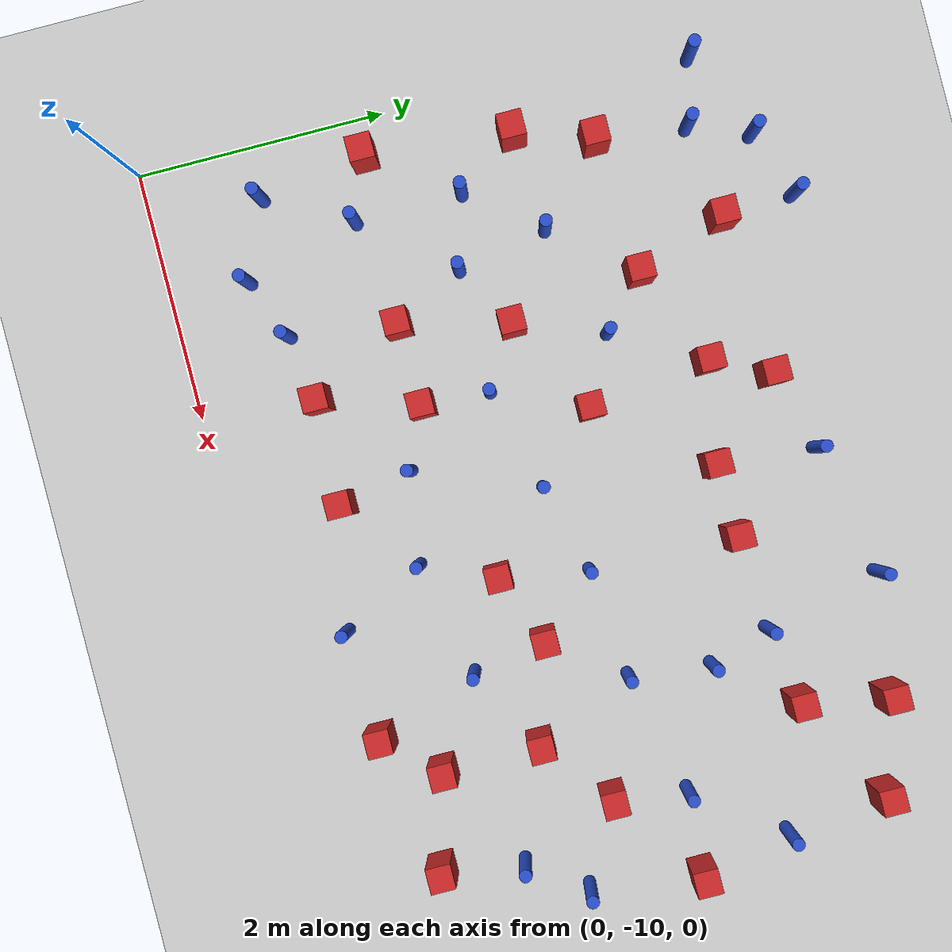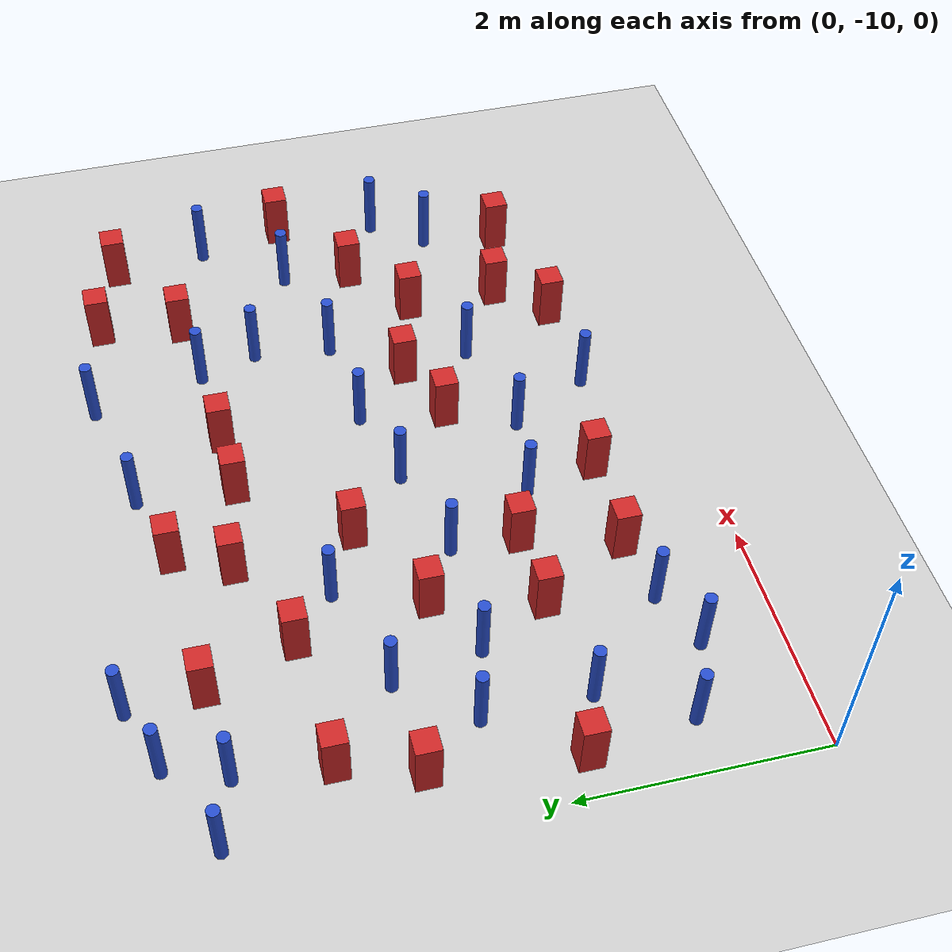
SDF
<sdf version="1.6">
 <world name="default">
  <model name="ground_plane">
   <static>1</static>
   <link name="link">
    <collision name="collision">
     <geometry><plane><normal>0 0 1</normal><size>100 100</size></plane></geometry>
     <surface><friction><ode><mu>100</mu><mu2>50</mu2></ode></friction></surface>
    </collision>
    <visual name="visual">
     <cast_shadows>0</cast_shadows>
     <geometry><plane><normal>0 0 1</normal><size>100 100</size></plane></geometry>
     <material>
      <ambient>1.0 1.0 1.0 1.0</ambient>
      <diffuse>0.8 0.8 0.8 1.0</diffuse>
      <specular>0.01 0.01 0.01 1.000000</specular>
     </material>
    </visual>
   </link>
  </model>
  <model name="pole_obstacle3">
   <static>true</static>
   <pose>1.05795134384 -9.34788797899 7.38925637345e-09 -8.47170692798e-08 1.24976764881e-08 -1.74513093027e-07</pose>
   <link name="link">
    <pose>0 0 0.3 0 -0 0</pose>
    <inertial>
     <mass>1</mass>
     <inertia><ixx>0.145833</ixx><ixy>0</ixy><ixz>0</ixz><iyy>0.145833</iyy><iyz>0</iyz><izz>0.125</izz></inertia>
    </inertial>
    <collision name="collision">
     <geometry><cylinder><radius>0.05</radius><length>.6</length></cylinder></geometry>
    </collision>
    <visual name="visual">
     <geometry><cylinder><radius>0.05</radius><length>.6</length></cylinder></geometry>
     <material>
      <script><name>Gazebo/Blue</name><uri>file://media/materials/scripts/gazebo.material</uri></script>
     </material>
    </visual>
   </link>
  </model>
  <model name="square_post_obstacle4">
   <static>true</static>
   <pose>5.90780278846 -9.03052146955 1.91545236811e-07 -7.35059704564e-06 1.12565212e-07 2.39332434364e-05</pose>
   <link name="link">
    <pose>0 0 0.25 0 -0 0</pose>
    <inertial>
     <mass>100</mass>
     <inertia>
      <ixx>0.166667</ixx>
      <ixy>0</ixy>
      <ixz>0</ixz>
      <iyy>0.166667</iyy>
      <iyz>0</iyz>
      <izz>0.166667</izz>
     </inertia>
    </inertial>
    <collision name="collision"><geometry><box><size>.2 .2 .5</size></box></geometry></collision>
    <visual name="visual">
     <geometry><box><size>.2 .2 .5</size></box></geometry>
     <material>
      <script><name>Gazebo/Red</name><uri>file://media/materials/scripts/gazebo.material</uri></script>
     </material>
    </visual>
   </link>
  </model>
  <model name="pole_obstacle13">
   <static>true</static>
   <pose>6.3429446586 -7.94124706151 7.38925637345e-09 -8.47170692796e-08 1.24976764786e-08 -1.74513093032e-07</pose>
   <link name="link">
    <pose>0 0 0.3 0 -0 0</pose>
    <inertial>
     <mass>1</mass>
     <inertia><ixx>0.145833</ixx><ixy>0</ixy><ixz>0</ixz><iyy>0.145833</iyy><iyz>0</iyz><izz>0.125</izz></inertia>
    </inertial>
    <collision name="collision">
     <geometry><cylinder><radius>0.05</radius><length>.6</length></cylinder></geometry>
    </collision>
    <visual name="visual">
     <geometry><cylinder><radius>0.05</radius><length>.6</length></cylinder></geometry>
     <material>
      <script><name>Gazebo/Blue</name><uri>file://media/materials/scripts/gazebo.material</uri></script>
     </material>
    </visual>
   </link>
  </model>
  <model name="square_post_obstacle10">
   <static>true</static>
   <pose>0.653097989824 -6.43755796853 1.91545236811e-07 -7.35059704564e-06 1.12565212e-07 2.39332434364e-05</pose>
   <link name="link">
    <pose>0 0 0.25 0 -0 0</pose>
    <inertial>
     <mass>100</mass>
     <inertia>
      <ixx>0.166667</ixx>
      <ixy>0</ixy>
      <ixz>0</ixz>
      <iyy>0.166667</iyy>
      <iyz>0</iyz>
      <izz>0.166667</izz>
     </inertia>
    </inertial>
    <collision name="collision"><geometry><box><size>.2 .2 .5</size></box></geometry></collision>
    <visual name="visual">
     <geometry><box><size>.2 .2 .5</size></box></geometry>
     <material>
      <script><name>Gazebo/Red</name><uri>file://media/materials/scripts/gazebo.material</uri></script>
     </material>
    </visual>
   </link>
  </model>
  <model name="pole_obstacle17">
   <static>true</static>
   <pose>0.203960969138 -5.54850880262 7.38925637345e-09 -8.471706928e-08 1.24976765124e-08 -1.74513093014e-07</pose>
   <link name="link">
    <pose>0 0 0.3 0 -0 0</pose>
    <inertial>
     <mass>1</mass>
     <inertia><ixx>0.145833</ixx><ixy>0</ixy><ixz>0</ixz><iyy>0.145833</iyy><iyz>0</iyz><izz>0.125</izz></inertia>
    </inertial>
    <collision name="collision">
     <geometry><cylinder><radius>0.05</radius><length>.6</length></cylinder></geometry>
    </collision>
    <visual name="visual">
     <geometry><cylinder><radius>0.05</radius><length>.6</length></cylinder></geometry>
     <material>
      <script><name>Gazebo/Blue</name><uri>file://media/materials/scripts/gazebo.material</uri></script>
     </material>
    </visual>
   </link>
  </model>
  <model name="pole_obstacle27">
   <static>true</static>
   <pose>4.88375247465 -6.57440800682 7.38925637345e-09 -8.47170692796e-08 1.24976764786e-08 -1.74513093032e-07</pose>
   <link name="link">
    <pose>0 0 0.3 0 -0 0</pose>
    <inertial>
     <mass>1</mass>
     <inertia><ixx>0.145833</ixx><ixy>0</ixy><ixz>0</ixz><iyy>0.145833</iyy><iyz>0</iyz><izz>0.125</izz></inertia>
    </inertial>
    <collision name="collision">
     <geometry><cylinder><radius>0.05</radius><length>.6</length></cylinder></geometry>
    </collision>
    <visual name="visual">
     <geometry><cylinder><radius>0.05</radius><length>.6</length></cylinder></geometry>
     <material>
      <script><name>Gazebo/Blue</name><uri>file://media/materials/scripts/gazebo.material</uri></script>
     </material>
    </visual>
   </link>
  </model>
  <model name="pole_obstacle29">
   <static>true</static>
   <pose>4.50286194384 -5.12811278264 7.38925637345e-09 -8.47170692796e-08 1.24976764786e-08 -1.74513093032e-07</pose>
   <link name="link">
    <pose>0 0 0.3 0 -0 0</pose>
    <inertial>
     <mass>1</mass>
     <inertia><ixx>0.145833</ixx><ixy>0</ixy><ixz>0</ixz><iyy>0.145833</iyy><iyz>0</iyz><izz>0.125</izz></inertia>
    </inertial>
    <collision name="collision">
     <geometry><cylinder><radius>0.05</radius><length>.6</length></cylinder></geometry>
    </collision>
    <visual name="visual">
     <geometry><cylinder><radius>0.05</radius><length>.6</length></cylinder></geometry>
     <material>
      <script><name>Gazebo/Blue</name><uri>file://media/materials/scripts/gazebo.material</uri></script>
     </material>
    </visual>
   </link>
  </model>
  <model name="square_post_obstacle21">
   <static>true</static>
   <pose>0.444392218966 -7.05212360835 1.91545236811e-07 -7.35059704564e-06 1.12565212e-07 2.39332434364e-05</pose>
   <link name="link">
    <pose>0 0 0.25 0 -0 0</pose>
    <inertial>
     <mass>100</mass>
     <inertia>
      <ixx>0.166667</ixx>
      <ixy>0</ixy>
      <ixz>0</ixz>
      <iyy>0.166667</iyy>
      <iyz>0</iyz>
      <izz>0.166667</izz>
     </inertia>
    </inertial>
    <collision name="collision"><geometry><box><size>.2 .2 .5</size></box></geometry></collision>
    <visual name="visual">
     <geometry><box><size>.2 .2 .5</size></box></geometry>
     <material>
      <script><name>Gazebo/Red</name><uri>file://media/materials/scripts/gazebo.material</uri></script>
     </material>
    </visual>
   </link>
  </model>
  <model name="square_post_obstacle24">
   <static>true</static>
   <pose>2.78095363937 -5.54996536458 1.91545236811e-07 -7.35059704564e-06 1.12565212e-07 2.39332434364e-05</pose>
   <link name="link">
    <pose>0 0 0.25 0 -0 0</pose>
    <inertial>
     <mass>100</mass>
     <inertia>
      <ixx>0.166667</ixx>
      <ixy>0</ixy>
      <ixz>0</ixz>
      <iyy>0.166667</iyy>
      <iyz>0</iyz>
      <izz>0.166667</izz>
     </inertia>
    </inertial>
    <collision name="collision"><geometry><box><size>.2 .2 .5</size></box></geometry></collision>
    <visual name="visual">
     <geometry><box><size>.2 .2 .5</size></box></geometry>
     <material>
      <script><name>Gazebo/Red</name><uri>file://media/materials/scripts/gazebo.material</uri></script>
     </material>
    </visual>
   </link>
  </model>
  <model name="square_post_obstacle25">
   <static>true</static>
   <pose>2.68070387838 -6.9954171048 1.91545236811e-07 -7.35059704564e-06 1.12565212e-07 2.39332434364e-05</pose>
   <link name="link">
    <pose>0 0 0.25 0 -0 0</pose>
    <inertial>
     <mass>100</mass>
     <inertia>
      <ixx>0.166667</ixx>
      <ixy>0</ixy>
      <ixz>0</ixz>
      <iyy>0.166667</iyy>
      <iyz>0</iyz>
      <izz>0.166667</izz>
     </inertia>
    </inertial>
    <collision name="collision"><geometry><box><size>.2 .2 .5</size></box></geometry></collision>
    <visual name="visual">
     <geometry><box><size>.2 .2 .5</size></box></geometry>
     <material>
      <script><name>Gazebo/Red</name><uri>file://media/materials/scripts/gazebo.material</uri></script>
     </material>
    </visual>
   </link>
  </model>
  <model name="square_post_obstacle26">
   <static>true</static>
   <pose>4.78776490456 -9.23508792336 1.91545236811e-07 -7.35059704564e-06 1.12565212e-07 2.39332434364e-05</pose>
   <link name="link">
    <pose>0 0 0.25 0 -0 0</pose>
    <inertial>
     <mass>100</mass>
     <inertia>
      <ixx>0.166667</ixx>
      <ixy>0</ixy>
      <ixz>0</ixz>
      <iyy>0.166667</iyy>
      <iyz>0</iyz>
      <izz>0.166667</izz>
     </inertia>
    </inertial>
    <collision name="collision"><geometry><box><size>.2 .2 .5</size></box></geometry></collision>
    <visual name="visual">
     <geometry><box><size>.2 .2 .5</size></box></geometry>
     <material>
      <script><name>Gazebo/Red</name><uri>file://media/materials/scripts/gazebo.material</uri></script>
     </material>
    </visual>
   </link>
  </model>
  <model name="square_post_obstacle30">
   <static>true</static>
   <pose>5.33728949045 -5.98505619092 1.91545236811e-07 -7.35059704564e-06 1.12565212e-07 2.39332434364e-05</pose>
   <link name="link">
    <pose>0 0 0.25 0 -0 0</pose>
    <inertial>
     <mass>100</mass>
     <inertia>
      <ixx>0.166667</ixx>
      <ixy>0</ixy>
      <ixz>0</ixz>
      <iyy>0.166667</iyy>
      <iyz>0</iyz>
      <izz>0.166667</izz>
     </inertia>
    </inertial>
    <collision name="collision"><geometry><box><size>.2 .2 .5</size></box></geometry></collision>
    <visual name="visual">
     <geometry><box><size>.2 .2 .5</size></box></geometry>
     <material>
      <script><name>Gazebo/Red</name><uri>file://media/materials/scripts/gazebo.material</uri></script>
     </material>
    </visual>
   </link>
  </model>
  <model name="pole_obstacle44">
   <static>true</static>
   <pose>0.806512139791 -8.41670155814 7.38925637345e-09 -8.47170692797e-08 1.249767648e-08 -1.74513093032e-07</pose>
   <link name="link">
    <pose>0 0 0.3 0 -0 0</pose>
    <inertial>
     <mass>1</mass>
     <inertia><ixx>0.145833</ixx><ixy>0</ixy><ixz>0</ixz><iyy>0.145833</iyy><iyz>0</iyz><izz>0.125</izz></inertia>
    </inertial>
    <collision name="collision">
     <geometry><cylinder><radius>0.05</radius><length>.6</length></cylinder></geometry>
    </collision>
    <visual name="visual">
     <geometry><cylinder><radius>0.05</radius><length>.6</length></cylinder></geometry>
     <material>
      <script><name>Gazebo/Blue</name><uri>file://media/materials/scripts/gazebo.material</uri></script>
     </material>
    </visual>
   </link>
  </model>
  <model name="square_post_obstacle39">
   <static>true</static>
   <pose>2.09425556777 -9.05012624536 1.91545236811e-07 -7.35059704564e-06 1.12565212e-07 2.39332434364e-05</pose>
   <link name="link">
    <pose>0 0 0.25 0 -0 0</pose>
    <inertial>
     <mass>100</mass>
     <inertia>
      <ixx>0.166667</ixx>
      <ixy>0</ixy>
      <ixz>0</ixz>
      <iyy>0.166667</iyy>
      <iyz>0</iyz>
      <izz>0.166667</izz>
     </inertia>
    </inertial>
    <collision name="collision"><geometry><box><size>.2 .2 .5</size></box></geometry></collision>
    <visual name="visual">
     <geometry><box><size>.2 .2 .5</size></box></geometry>
     <material>
      <script><name>Gazebo/Red</name><uri>file://media/materials/scripts/gazebo.material</uri></script>
     </material>
    </visual>
   </link>
  </model>
  <model name="pole_obstacle52">
   <static>true</static>
   <pose>2.37389168147 -7.72454690963 7.38925637345e-09 -8.47170692798e-08 1.24976765033e-08 -1.74513093019e-07</pose>
   <link name="link">
    <pose>0 0 0.3 0 -0 0</pose>
    <inertial>
     <mass>1</mass>
     <inertia><ixx>0.145833</ixx><ixy>0</ixy><ixz>0</ixz><iyy>0.145833</iyy><iyz>0</iyz><izz>0.125</izz></inertia>
    </inertial>
    <collision name="collision">
     <geometry><cylinder><radius>0.05</radius><length>.6</length></cylinder></geometry>
    </collision>
    <visual name="visual">
     <geometry><cylinder><radius>0.05</radius><length>.6</length></cylinder></geometry>
     <material>
      <script><name>Gazebo/Blue</name><uri>file://media/materials/scripts/gazebo.material</uri></script>
     </material>
    </visual>
   </link>
  </model>
  <model name="square_post_obstacle40">
   <static>true</static>
   <pose>2.33807192643 -8.26988052835 1.91545236811e-07 -7.35059704564e-06 1.12565212e-07 2.39332434364e-05</pose>
   <link name="link">
    <pose>0 0 0.25 0 -0 0</pose>
    <inertial>
     <mass>100</mass>
     <inertia>
      <ixx>0.166667</ixx>
      <ixy>0</ixy>
      <ixz>0</ixz>
      <iyy>0.166667</iyy>
      <iyz>0</iyz>
      <izz>0.166667</izz>
     </inertia>
    </inertial>
    <collision name="collision"><geometry><box><size>.2 .2 .5</size></box></geometry></collision>
    <visual name="visual">
     <geometry><box><size>.2 .2 .5</size></box></geometry>
     <material>
      <script><name>Gazebo/Red</name><uri>file://media/materials/scripts/gazebo.material</uri></script>
     </material>
    </visual>
   </link>
  </model>
  <model name="square_post_obstacle41">
   <static>true</static>
   <pose>6.20964071692 -5.51442584216 1.91545236811e-07 -7.35059704564e-06 1.12565212e-07 2.39332434364e-05</pose>
   <link name="link">
    <pose>0 0 0.25 0 -0 0</pose>
    <inertial>
     <mass>100</mass>
     <inertia>
      <ixx>0.166667</ixx>
      <ixy>0</ixy>
      <ixz>0</ixz>
      <iyy>0.166667</iyy>
      <iyz>0</iyz>
      <izz>0.166667</izz>
     </inertia>
    </inertial>
    <collision name="collision"><geometry><box><size>.2 .2 .5</size></box></geometry></collision>
    <visual name="visual">
     <geometry><box><size>.2 .2 .5</size></box></geometry>
     <material>
      <script><name>Gazebo/Red</name><uri>file://media/materials/scripts/gazebo.material</uri></script>
     </material>
    </visual>
   </link>
  </model>
  <model name="pole_obstacle58">
   <static>true</static>
   <pose>3.54991783234 -8.60437881437 7.38925637345e-09 -8.47170692793e-08 1.24976764408e-08 -1.74513093041e-07</pose>
   <link name="link">
    <pose>0 0 0.3 0 -0 0</pose>
    <inertial>
     <mass>1</mass>
     <inertia><ixx>0.145833</ixx><ixy>0</ixy><ixz>0</ixz><iyy>0.145833</iyy><iyz>0</iyz><izz>0.125</izz></inertia>
    </inertial>
    <collision name="collision">
     <geometry><cylinder><radius>0.05</radius><length>.6</length></cylinder></geometry>
    </collision>
    <visual name="visual">
     <geometry><cylinder><radius>0.05</radius><length>.6</length></cylinder></geometry>
     <material>
      <script><name>Gazebo/Blue</name><uri>file://media/materials/scripts/gazebo.material</uri></script>
     </material>
    </visual>
   </link>
  </model>
  <model name="square_post_obstacle47">
   <static>true</static>
   <pose>3.79479880949 -8.02449202139 1.91545236811e-07 -7.35059704564e-06 1.12565212e-07 2.39332434364e-05</pose>
   <link name="link">
    <pose>0 0 0.25 0 -0 0</pose>
    <inertial>
     <mass>100</mass>
     <inertia>
      <ixx>0.166667</ixx>
      <ixy>0</ixy>
      <ixz>0</ixz>
      <iyy>0.166667</iyy>
      <iyz>0</iyz>
      <izz>0.166667</izz>
     </inertia>
    </inertial>
    <collision name="collision"><geometry><box><size>.2 .2 .5</size></box></geometry></collision>
    <visual name="visual">
     <geometry><box><size>.2 .2 .5</size></box></geometry>
     <material>
      <script><name>Gazebo/Red</name><uri>file://media/materials/scripts/gazebo.material</uri></script>
     </material>
    </visual>
   </link>
  </model>
  <model name="square_post_obstacle50">
   <static>true</static>
   <pose>3.36151711548 -6.1576547651 1.91545236811e-07 -7.35059704564e-06 1.12565212e-07 2.39332434364e-05</pose>
   <link name="link">
    <pose>0 0 0.25 0 -0 0</pose>
    <inertial>
     <mass>100</mass>
     <inertia>
      <ixx>0.166667</ixx>
      <ixy>0</ixy>
      <ixz>0</ixz>
      <iyy>0.166667</iyy>
      <iyz>0</iyz>
      <izz>0.166667</izz>
     </inertia>
    </inertial>
    <collision name="collision"><geometry><box><size>.2 .2 .5</size></box></geometry></collision>
    <visual name="visual">
     <geometry><box><size>.2 .2 .5</size></box></geometry>
     <material>
      <script><name>Gazebo/Red</name><uri>file://media/materials/scripts/gazebo.material</uri></script>
     </material>
    </visual>
   </link>
  </model>
  <model name="square_post_obstacle51">
   <static>true</static>
   <pose>6.45801496377 -7.05389710991 1.91545236811e-07 -7.35059704564e-06 1.12565212e-07 2.39332434364e-05</pose>
   <link name="link">
    <pose>0 0 0.25 0 -0 0</pose>
    <inertial>
     <mass>100</mass>
     <inertia>
      <ixx>0.166667</ixx>
      <ixy>0</ixy>
      <ixz>0</ixz>
      <iyy>0.166667</iyy>
      <iyz>0</iyz>
      <izz>0.166667</izz>
     </inertia>
    </inertial>
    <collision name="collision"><geometry><box><size>.2 .2 .5</size></box></geometry></collision>
    <visual name="visual">
     <geometry><box><size>.2 .2 .5</size></box></geometry>
     <material>
      <script><name>Gazebo/Red</name><uri>file://media/materials/scripts/gazebo.material</uri></script>
     </material>
    </visual>
   </link>
  </model>
  <model name="square_post_obstacle60">
   <static>true</static>
   <pose>1.74928343578 -6.35825586301 1.91545236811e-07 -7.35059704564e-06 1.12565212e-07 2.39332434364e-05</pose>
   <link name="link">
    <pose>0 0 0.25 0 -0 0</pose>
    <inertial>
     <mass>100</mass>
     <inertia>
      <ixx>0.166667</ixx>
      <ixy>0</ixy>
      <ixz>0</ixz>
      <iyy>0.166667</iyy>
      <iyz>0</iyz>
      <izz>0.166667</izz>
     </inertia>
    </inertial>
    <collision name="collision"><geometry><box><size>.2 .2 .5</size></box></geometry></collision>
    <visual name="visual">
     <geometry><box><size>.2 .2 .5</size></box></geometry>
     <material>
      <script><name>Gazebo/Red</name><uri>file://media/materials/scripts/gazebo.material</uri></script>
     </material>
    </visual>
   </link>
  </model>
  <model name="square_post_obstacle66">
   <static>true</static>
   <pose>5.46292440655 -5.28933867114 1.91545236811e-07 -7.35059704564e-06 1.12565212e-07 2.39332434364e-05</pose>
   <link name="link">
    <pose>0 0 0.25 0 -0 0</pose>
    <inertial>
     <mass>100</mass>
     <inertia>
      <ixx>0.166667</ixx>
      <ixy>0</ixy>
      <ixz>0</ixz>
      <iyy>0.166667</iyy>
      <iyz>0</iyz>
      <izz>0.166667</izz>
     </inertia>
    </inertial>
    <collision name="collision"><geometry><box><size>.2 .2 .5</size></box></geometry></collision>
    <visual name="visual">
     <geometry><box><size>.2 .2 .5</size></box></geometry>
     <material>
      <script><name>Gazebo/Red</name><uri>file://media/materials/scripts/gazebo.material</uri></script>
     </material>
    </visual>
   </link>
  </model>
  <model name="pole_obstacle81">
   <static>true</static>
   <pose>4.72069500537 -6.07821843026 7.38925637345e-09 -8.47170692796e-08 1.24976764786e-08 -1.74513093032e-07</pose>
   <link name="link">
    <pose>0 0 0.3 0 -0 0</pose>
    <inertial>
     <mass>1</mass>
     <inertia><ixx>0.145833</ixx><ixy>0</ixy><ixz>0</ixz><iyy>0.145833</iyy><iyz>0</iyz><izz>0.125</izz></inertia>
    </inertial>
    <collision name="collision">
     <geometry><cylinder><radius>0.05</radius><length>.6</length></cylinder></geometry>
    </collision>
    <visual name="visual">
     <geometry><cylinder><radius>0.05</radius><length>.6</length></cylinder></geometry>
     <material>
      <script><name>Gazebo/Blue</name><uri>file://media/materials/scripts/gazebo.material</uri></script>
     </material>
    </visual>
   </link>
  </model>
  <model name="pole_obstacle83">
   <static>true</static>
   <pose>0.796241140828 -7.54776595732 7.38925637345e-09 -8.471706928e-08 1.24976765086e-08 -1.74513093015e-07</pose>
   <link name="link">
    <pose>0 0 0.3 0 -0 0</pose>
    <inertial>
     <mass>1</mass>
     <inertia><ixx>0.145833</ixx><ixy>0</ixy><ixz>0</ixz><iyy>0.145833</iyy><iyz>0</iyz><izz>0.125</izz></inertia>
    </inertial>
    <collision name="collision">
     <geometry><cylinder><radius>0.05</radius><length>.6</length></cylinder></geometry>
    </collision>
    <visual name="visual">
     <geometry><cylinder><radius>0.05</radius><length>.6</length></cylinder></geometry>
     <material>
      <script><name>Gazebo/Blue</name><uri>file://media/materials/scripts/gazebo.material</uri></script>
     </material>
    </visual>
   </link>
  </model>
  <model name="pole_obstacle84">
   <static>true</static>
   <pose>1.45996253803 -5.02282189271 7.38925637345e-09 -8.47170692799e-08 1.24976765033e-08 -1.74513093018e-07</pose>
   <link name="link">
    <pose>0 0 0.3 0 -0 0</pose>
    <inertial>
     <mass>1</mass>
     <inertia><ixx>0.145833</ixx><ixy>0</ixy><ixz>0</ixz><iyy>0.145833</iyy><iyz>0</iyz><izz>0.125</izz></inertia>
    </inertial>
    <collision name="collision">
     <geometry><cylinder><radius>0.05</radius><length>.6</length></cylinder></geometry>
    </collision>
    <visual name="visual">
     <geometry><cylinder><radius>0.05</radius><length>.6</length></cylinder></geometry>
     <material>
      <script><name>Gazebo/Blue</name><uri>file://media/materials/scripts/gazebo.material</uri></script>
     </material>
    </visual>
   </link>
  </model>
  <model name="pole_obstacle88">
   <static>true</static>
   <pose>2.81414375389 -8.48659525875 7.38925637345e-09 -8.47170692793e-08 1.24976764408e-08 -1.74513093041e-07</pose>
   <link name="link">
    <pose>0 0 0.3 0 -0 0</pose>
    <inertial>
     <mass>1</mass>
     <inertia><ixx>0.145833</ixx><ixy>0</ixy><ixz>0</ixz><iyy>0.145833</iyy><iyz>0</iyz><izz>0.125</izz></inertia>
    </inertial>
    <collision name="collision">
     <geometry><cylinder><radius>0.05</radius><length>.6</length></cylinder></geometry>
    </collision>
    <visual name="visual">
     <geometry><cylinder><radius>0.05</radius><length>.6</length></cylinder></geometry>
     <material>
      <script><name>Gazebo/Blue</name><uri>file://media/materials/scripts/gazebo.material</uri></script>
     </material>
    </visual>
   </link>
  </model>
  <model name="square_post_obstacle78">
   <static>true</static>
   <pose>5.14772590415 -8.03112473591 1.91545236811e-07 -7.35059704564e-06 1.12565212e-07 2.39332434364e-05</pose>
   <link name="link">
    <pose>0 0 0.25 0 -0 0</pose>
    <inertial>
     <mass>100</mass>
     <inertia>
      <ixx>0.166667</ixx>
      <ixy>0</ixy>
      <ixz>0</ixz>
      <iyy>0.166667</iyy>
      <iyz>0</iyz>
      <izz>0.166667</izz>
     </inertia>
    </inertial>
    <collision name="collision"><geometry><box><size>.2 .2 .5</size></box></geometry></collision>
    <visual name="visual">
     <geometry><box><size>.2 .2 .5</size></box></geometry>
     <material>
      <script><name>Gazebo/Red</name><uri>file://media/materials/scripts/gazebo.material</uri></script>
     </material>
    </visual>
   </link>
  </model>
  <model name="square_post_obstacle88">
   <static>true</static>
   <pose>1.67628485544 -8.29163907774 1.91545236811e-07 -7.35059704564e-06 1.12565212e-07 2.39332434364e-05</pose>
   <link name="link">
    <pose>0 0 0.25 0 -0 0</pose>
    <inertial>
     <mass>100</mass>
     <inertia>
      <ixx>0.166667</ixx>
      <ixy>0</ixy>
      <ixz>0</ixz>
      <iyy>0.166667</iyy>
      <iyz>0</iyz>
      <izz>0.166667</izz>
     </inertia>
    </inertial>
    <collision name="collision"><geometry><box><size>.2 .2 .5</size></box></geometry></collision>
    <visual name="visual">
     <geometry><box><size>.2 .2 .5</size></box></geometry>
     <material>
      <script><name>Gazebo/Red</name><uri>file://media/materials/scripts/gazebo.material</uri></script>
     </material>
    </visual>
   </link>
  </model>
  <model name="pole_obstacle108">
   <static>true</static>
   <pose>3.19937729945 -7.50906910845 7.38925637345e-09 -8.47170692798e-08 1.24976765033e-08 -1.74513093019e-07</pose>
   <link name="link">
    <pose>0 0 0.3 0 -0 0</pose>
    <inertial>
     <mass>1</mass>
     <inertia><ixx>0.145833</ixx><ixy>0</ixy><ixz>0</ixz><iyy>0.145833</iyy><iyz>0</iyz><izz>0.125</izz></inertia>
    </inertial>
    <collision name="collision">
     <geometry><cylinder><radius>0.05</radius><length>.6</length></cylinder></geometry>
    </collision>
    <visual name="visual">
     <geometry><cylinder><radius>0.05</radius><length>.6</length></cylinder></geometry>
     <material>
      <script><name>Gazebo/Blue</name><uri>file://media/materials/scripts/gazebo.material</uri></script>
     </material>
    </visual>
   </link>
  </model>
  <model name="square_post_obstacle114">
   <static>true</static>
   <pose>4.37062049661 -7.80031642551 1.91545236811e-07 -7.35059704564e-06 1.12565212e-07 2.39332434364e-05</pose>
   <link name="link">
    <pose>0 0 0.25 0 -0 0</pose>
    <inertial>
     <mass>100</mass>
     <inertia>
      <ixx>0.166667</ixx>
      <ixy>0</ixy>
      <ixz>0</ixz>
      <iyy>0.166667</iyy>
      <iyz>0</iyz>
      <izz>0.166667</izz>
     </inertia>
    </inertial>
    <collision name="collision"><geometry><box><size>.2 .2 .5</size></box></geometry></collision>
    <visual name="visual">
     <geometry><box><size>.2 .2 .5</size></box></geometry>
     <material>
      <script><name>Gazebo/Red</name><uri>file://media/materials/scripts/gazebo.material</uri></script>
     </material>
    </visual>
   </link>
  </model>
  <model name="pole_obstacle119">
   <static>true</static>
   <pose>1.54973930428 -9.15057605739 7.38925637345e-09 -8.47170692798e-08 1.24976764881e-08 -1.74513093027e-07</pose>
   <link name="link">
    <pose>0 0 0.3 0 -0 0</pose>
    <inertial>
     <mass>1</mass>
     <inertia><ixx>0.145833</ixx><ixy>0</ixy><ixz>0</ixz><iyy>0.145833</iyy><iyz>0</iyz><izz>0.125</izz></inertia>
    </inertial>
    <collision name="collision">
     <geometry><cylinder><radius>0.05</radius><length>.6</length></cylinder></geometry>
    </collision>
    <visual name="visual">
     <geometry><cylinder><radius>0.05</radius><length>.6</length></cylinder></geometry>
     <material>
      <script><name>Gazebo/Blue</name><uri>file://media/materials/scripts/gazebo.material</uri></script>
     </material>
    </visual>
   </link>
  </model>
  <model name="pole_obstacle121">
   <static>true</static>
   <pose>0.918908124001 -5.22301395987 7.38925637345e-09 -8.471706928e-08 1.24976765086e-08 -1.74513093015e-07</pose>
   <link name="link">
    <pose>0 0 0.3 0 -0 0</pose>
    <inertial>
     <mass>1</mass>
     <inertia><ixx>0.145833</ixx><ixy>0</ixy><ixz>0</ixz><iyy>0.145833</iyy><iyz>0</iyz><izz>0.125</izz></inertia>
    </inertial>
    <collision name="collision">
     <geometry><cylinder><radius>0.05</radius><length>.6</length></cylinder></geometry>
    </collision>
    <visual name="visual">
     <geometry><cylinder><radius>0.05</radius><length>.6</length></cylinder></geometry>
     <material>
      <script><name>Gazebo/Blue</name><uri>file://media/materials/scripts/gazebo.material</uri></script>
     </material>
    </visual>
   </link>
  </model>
  <model name="pole_obstacle130">
   <static>true</static>
   <pose>1.24032207118 -6.98483126732 7.38925637345e-09 -8.47170692799e-08 1.24976765033e-08 -1.74513093018e-07</pose>
   <link name="link">
    <pose>0 0 0.3 0 -0 0</pose>
    <inertial>
     <mass>1</mass>
     <inertia><ixx>0.145833</ixx><ixy>0</ixy><ixz>0</ixz><iyy>0.145833</iyy><iyz>0</iyz><izz>0.125</izz></inertia>
    </inertial>
    <collision name="collision">
     <geometry><cylinder><radius>0.05</radius><length>.6</length></cylinder></geometry>
    </collision>
    <visual name="visual">
     <geometry><cylinder><radius>0.05</radius><length>.6</length></cylinder></geometry>
     <material>
      <script><name>Gazebo/Blue</name><uri>file://media/materials/scripts/gazebo.material</uri></script>
     </material>
    </visual>
   </link>
  </model>
  <model name="pole_obstacle134">
   <static>true</static>
   <pose>5.79524228353 -7.00598912511 7.38925637345e-09 -8.47170692796e-08 1.24976764786e-08 -1.74513093032e-07</pose>
   <link name="link">
    <pose>0 0 0.3 0 -0 0</pose>
    <inertial>
     <mass>1</mass>
     <inertia><ixx>0.145833</ixx><ixy>0</ixy><ixz>0</ixz><iyy>0.145833</iyy><iyz>0</iyz><izz>0.125</izz></inertia>
    </inertial>
    <collision name="collision">
     <geometry><cylinder><radius>0.05</radius><length>.6</length></cylinder></geometry>
    </collision>
    <visual name="visual">
     <geometry><cylinder><radius>0.05</radius><length>.6</length></cylinder></geometry>
     <material>
      <script><name>Gazebo/Blue</name><uri>file://media/materials/scripts/gazebo.material</uri></script>
     </material>
    </visual>
   </link>
  </model>
  <model name="square_post_obstacle133">
   <static>true</static>
   <pose>1.89292083979 -7.42460722523 1.91545236811e-07 -7.35059704564e-06 1.12565212e-07 2.39332434364e-05</pose>
   <link name="link">
    <pose>0 0 0.25 0 -0 0</pose>
    <inertial>
     <mass>100</mass>
     <inertia>
      <ixx>0.166667</ixx>
      <ixy>0</ixy>
      <ixz>0</ixz>
      <iyy>0.166667</iyy>
      <iyz>0</iyz>
      <izz>0.166667</izz>
     </inertia>
    </inertial>
    <collision name="collision"><geometry><box><size>.2 .2 .5</size></box></geometry></collision>
    <visual name="visual">
     <geometry><box><size>.2 .2 .5</size></box></geometry>
     <material>
      <script><name>Gazebo/Red</name><uri>file://media/materials/scripts/gazebo.material</uri></script>
     </material>
    </visual>
   </link>
  </model>
  <model name="pole_obstacle141">
   <static>true</static>
   <pose>0.738035743076 -5.70199784005 7.38925637345e-09 -8.471706928e-08 1.24976765086e-08 -1.74513093015e-07</pose>
   <link name="link">
    <pose>0 0 0.3 0 -0 0</pose>
    <inertial>
     <mass>1</mass>
     <inertia><ixx>0.145833</ixx><ixy>0</ixy><ixz>0</ixz><iyy>0.145833</iyy><iyz>0</iyz><izz>0.125</izz></inertia>
    </inertial>
    <collision name="collision">
     <geometry><cylinder><radius>0.05</radius><length>.6</length></cylinder></geometry>
    </collision>
    <visual name="visual">
     <geometry><cylinder><radius>0.05</radius><length>.6</length></cylinder></geometry>
     <material>
      <script><name>Gazebo/Blue</name><uri>file://media/materials/scripts/gazebo.material</uri></script>
     </material>
    </visual>
   </link>
  </model>
  <model name="pole_obstacle142">
   <static>true</static>
   <pose>3.92197028383 -7.32024069006 7.38925637345e-09 -8.47170692798e-08 1.24976765033e-08 -1.74513093019e-07</pose>
   <link name="link">
    <pose>0 0 0.3 0 -0 0</pose>
    <inertial>
     <mass>1</mass>
     <inertia><ixx>0.145833</ixx><ixy>0</ixy><ixz>0</ixz><iyy>0.145833</iyy><iyz>0</iyz><izz>0.125</izz></inertia>
    </inertial>
    <collision name="collision">
     <geometry><cylinder><radius>0.05</radius><length>.6</length></cylinder></geometry>
    </collision>
    <visual name="visual">
     <geometry><cylinder><radius>0.05</radius><length>.6</length></cylinder></geometry>
     <material>
      <script><name>Gazebo/Blue</name><uri>file://media/materials/scripts/gazebo.material</uri></script>
     </material>
    </visual>
   </link>
  </model>
  <model name="pole_obstacle145">
   <static>true</static>
   <pose>3.43709636579 -5.35096554056 7.38925637345e-09 -8.47170692798e-08 1.24976765033e-08 -1.74513093019e-07</pose>
   <link name="link">
    <pose>0 0 0.3 0 -0 0</pose>
    <inertial>
     <mass>1</mass>
     <inertia><ixx>0.145833</ixx><ixy>0</ixy><ixz>0</ixz><iyy>0.145833</iyy><iyz>0</iyz><izz>0.125</izz></inertia>
    </inertial>
    <collision name="collision">
     <geometry><cylinder><radius>0.05</radius><length>.6</length></cylinder></geometry>
    </collision>
    <visual name="visual">
     <geometry><cylinder><radius>0.05</radius><length>.6</length></cylinder></geometry>
     <material>
      <script><name>Gazebo/Blue</name><uri>file://media/materials/scripts/gazebo.material</uri></script>
     </material>
    </visual>
   </link>
  </model>
  <model name="square_post_obstacle140">
   <static>true</static>
   <pose>1.49073857067 -5.62463249638 1.91545236811e-07 -7.35059704564e-06 1.12565212e-07 2.39332434364e-05</pose>
   <link name="link">
    <pose>0 0 0.25 0 -0 0</pose>
    <inertial>
     <mass>100</mass>
     <inertia>
      <ixx>0.166667</ixx>
      <ixy>0</ixy>
      <ixz>0</ixz>
      <iyy>0.166667</iyy>
      <iyz>0</iyz>
      <izz>0.166667</izz>
     </inertia>
    </inertial>
    <collision name="collision"><geometry><box><size>.2 .2 .5</size></box></geometry></collision>
    <visual name="visual">
     <geometry><box><size>.2 .2 .5</size></box></geometry>
     <material>
      <script><name>Gazebo/Red</name><uri>file://media/materials/scripts/gazebo.material</uri></script>
     </material>
    </visual>
   </link>
  </model>
  <model name="pole_obstacle149">
   <static>true</static>
   <pose>0.44318292713 -9.08681300571 7.38925637345e-09 -8.47170692796e-08 1.24976764724e-08 -1.74513093036e-07</pose>
   <link name="link">
    <pose>0 0 0.3 0 -0 0</pose>
    <inertial>
     <mass>1</mass>
     <inertia><ixx>0.145833</ixx><ixy>0</ixy><ixz>0</ixz><iyy>0.145833</iyy><iyz>0</iyz><izz>0.125</izz></inertia>
    </inertial>
    <collision name="collision">
     <geometry><cylinder><radius>0.05</radius><length>.6</length></cylinder></geometry>
    </collision>
    <visual name="visual">
     <geometry><cylinder><radius>0.05</radius><length>.6</length></cylinder></geometry>
     <material>
      <script><name>Gazebo/Blue</name><uri>file://media/materials/scripts/gazebo.material</uri></script>
     </material>
    </visual>
   </link>
  </model>
  <model name="square_post_obstacle146">
   <static>true</static>
   <pose>5.69916006152 -7.58846634871 1.91545236811e-07 -7.35059704564e-06 1.12565212e-07 2.39332434364e-05</pose>
   <link name="link">
    <pose>0 0 0.25 0 -0 0</pose>
    <inertial>
     <mass>100</mass>
     <inertia>
      <ixx>0.166667</ixx>
      <ixy>0</ixy>
      <ixz>0</ixz>
      <iyy>0.166667</iyy>
      <iyz>0</iyz>
      <izz>0.166667</izz>
     </inertia>
    </inertial>
    <collision name="collision"><geometry><box><size>.2 .2 .5</size></box></geometry></collision>
    <visual name="visual">
     <geometry><box><size>.2 .2 .5</size></box></geometry>
     <material>
      <script><name>Gazebo/Red</name><uri>file://media/materials/scripts/gazebo.material</uri></script>
     </material>
    </visual>
   </link>
  </model>
  <model name="pole_obstacle153">
   <static>true</static>
   <pose>6.02276414969 -8.38680026043 7.38925637345e-09 -8.471706928e-08 1.24976765081e-08 -1.74513093015e-07</pose>
   <link name="link">
    <pose>0 0 0.3 0 -0 0</pose>
    <inertial>
     <mass>1</mass>
     <inertia><ixx>0.145833</ixx><ixy>0</ixy><ixz>0</ixz><iyy>0.145833</iyy><iyz>0</iyz><izz>0.125</izz></inertia>
    </inertial>
    <collision name="collision">
     <geometry><cylinder><radius>0.05</radius><length>.6</length></cylinder></geometry>
    </collision>
    <visual name="visual">
     <geometry><cylinder><radius>0.05</radius><length>.6</length></cylinder></geometry>
     <material>
      <script><name>Gazebo/Blue</name><uri>file://media/materials/scripts/gazebo.material</uri></script>
     </material>
    </visual>
   </link>
  </model>
  <model name="pole_obstacle155">
   <static>true</static>
   <pose>2.15474010425 -6.71388715049 7.38925637345e-09 -8.47170692798e-08 1.24976765033e-08 -1.74513093019e-07</pose>
   <link name="link">
    <pose>0 0 0.3 0 -0 0</pose>
    <inertial>
     <mass>1</mass>
     <inertia><ixx>0.145833</ixx><ixy>0</ixy><ixz>0</ixz><iyy>0.145833</iyy><iyz>0</iyz><izz>0.125</izz></inertia>
    </inertial>
    <collision name="collision">
     <geometry><cylinder><radius>0.05</radius><length>.6</length></cylinder></geometry>
    </collision>
    <visual name="visual">
     <geometry><cylinder><radius>0.05</radius><length>.6</length></cylinder></geometry>
     <material>
      <script><name>Gazebo/Blue</name><uri>file://media/materials/scripts/gazebo.material</uri></script>
     </material>
    </visual>
   </link>
  </model>
  <model name="pole_obstacle156">
   <static>true</static>
   <pose>3.91317589611 -9.28610339892 7.38925637345e-09 -8.47170692793e-08 1.24976764408e-08 -1.74513093041e-07</pose>
   <link name="link">
    <pose>0 0 0.3 0 -0 0</pose>
    <inertial>
     <mass>1</mass>
     <inertia><ixx>0.145833</ixx><ixy>0</ixy><ixz>0</ixz><iyy>0.145833</iyy><iyz>0</iyz><izz>0.125</izz></inertia>
    </inertial>
    <collision name="collision">
     <geometry><cylinder><radius>0.05</radius><length>.6</length></cylinder></geometry>
    </collision>
    <visual name="visual">
     <geometry><cylinder><radius>0.05</radius><length>.6</length></cylinder></geometry>
     <material>
      <script><name>Gazebo/Blue</name><uri>file://media/materials/scripts/gazebo.material</uri></script>
     </material>
    </visual>
   </link>
  </model>
  <model name="pole_obstacle162">
   <static>true</static>
   <pose>4.80211189879 -7.23325242031 7.38925637345e-09 -8.47170692796e-08 1.24976764786e-08 -1.74513093032e-07</pose>
   <link name="link">
    <pose>0 0 0.3 0 -0 0</pose>
    <inertial>
     <mass>1</mass>
     <inertia><ixx>0.145833</ixx><ixy>0</ixy><ixz>0</ixz><iyy>0.145833</iyy><iyz>0</iyz><izz>0.125</izz></inertia>
    </inertial>
    <collision name="collision">
     <geometry><cylinder><radius>0.05</radius><length>.6</length></cylinder></geometry>
    </collision>
    <visual name="visual">
     <geometry><cylinder><radius>0.05</radius><length>.6</length></cylinder></geometry>
     <material>
      <script><name>Gazebo/Blue</name><uri>file://media/materials/scripts/gazebo.material</uri></script>
     </material>
    </visual>
   </link>
  </model>
  <model name="pole_obstacle166">
   <static>true</static>
   <pose>4.47814594954 -8.39909942781 7.38925637345e-09 -8.471706928e-08 1.24976765081e-08 -1.74513093015e-07</pose>
   <link name="link">
    <pose>0 0 0.3 0 -0 0</pose>
    <inertial>
     <mass>1</mass>
     <inertia><ixx>0.145833</ixx><ixy>0</ixy><ixz>0</ixz><iyy>0.145833</iyy><iyz>0</iyz><izz>0.125</izz></inertia>
    </inertial>
    <collision name="collision">
     <geometry><cylinder><radius>0.05</radius><length>.6</length></cylinder></geometry>
    </collision>
    <visual name="visual">
     <geometry><cylinder><radius>0.05</radius><length>.6</length></cylinder></geometry>
     <material>
      <script><name>Gazebo/Blue</name><uri>file://media/materials/scripts/gazebo.material</uri></script>
     </material>
    </visual>
   </link>
  </model>
  <model name="square_post_obstacle182">
   <static>true</static>
   <pose>2.55893867925 -6.0109571691 1.91545236811e-07 -7.35059704564e-06 1.12565212e-07 2.39332434364e-05</pose>
   <link name="link">
    <pose>0 0 0.25 0 -0 0</pose>
    <inertial>
     <mass>100</mass>
     <inertia>
      <ixx>0.166667</ixx>
      <ixy>0</ixy>
      <ixz>0</ixz>
      <iyy>0.166667</iyy>
      <iyz>0</iyz>
      <izz>0.166667</izz>
     </inertia>
    </inertial>
    <collision name="collision"><geometry><box><size>.2 .2 .5</size></box></geometry></collision>
    <visual name="visual">
     <geometry><box><size>.2 .2 .5</size></box></geometry>
     <material>
      <script><name>Gazebo/Red</name><uri>file://media/materials/scripts/gazebo.material</uri></script>
     </material>
    </visual>
   </link>
  </model>
  <model name="square_post_obstacle199">
   <static>true</static>
   <pose>5.15885878338 -8.82490775837 1.91545236811e-07 -7.35059704564e-06 1.12565212e-07 2.39332434364e-05</pose>
   <link name="link">
    <pose>0 0 0.25 0 -0 0</pose>
    <inertial>
     <mass>100</mass>
     <inertia>
      <ixx>0.166667</ixx>
      <ixy>0</ixy>
      <ixz>0</ixz>
      <iyy>0.166667</iyy>
      <iyz>0</iyz>
      <izz>0.166667</izz>
     </inertia>
    </inertial>
    <collision name="collision"><geometry><box><size>.2 .2 .5</size></box></geometry></collision>
    <visual name="visual">
     <geometry><box><size>.2 .2 .5</size></box></geometry>
     <material>
      <script><name>Gazebo/Red</name><uri>file://media/materials/scripts/gazebo.material</uri></script>
     </material>
    </visual>
   </link>
  </model>
  <model name="pole_obstacle192">
   <static>true</static>
   <pose>6.31344039784 -6.32040285352 7.38925637345e-09 -8.47170692796e-08 1.24976764786e-08 -1.74513093032e-07</pose>
   <link name="link">
    <pose>0 0 0.3 0 -0 0</pose>
    <inertial>
     <mass>1</mass>
     <inertia><ixx>0.145833</ixx><ixy>0</ixy><ixz>0</ixz><iyy>0.145833</iyy><iyz>0</iyz><izz>0.125</izz></inertia>
    </inertial>
    <collision name="collision">
     <geometry><cylinder><radius>0.05</radius><length>.6</length></cylinder></geometry>
    </collision>
    <visual name="visual">
     <geometry><cylinder><radius>0.05</radius><length>.6</length></cylinder></geometry>
     <material>
      <script><name>Gazebo/Blue</name><uri>file://media/materials/scripts/gazebo.material</uri></script>
     </material>
    </visual>
   </link>
  </model>
  <model name="square_post_obstacle206">
   <static>true</static>
   <pose>3.9482816971 -6.13503518085 1.91545236811e-07 -7.35059704564e-06 1.12565212e-07 2.39332434364e-05</pose>
   <link name="link">
    <pose>0 0 0.25 0 -0 0</pose>
    <inertial>
     <mass>100</mass>
     <inertia>
      <ixx>0.166667</ixx>
      <ixy>0</ixy>
      <ixz>0</ixz>
      <iyy>0.166667</iyy>
      <iyz>0</iyz>
      <izz>0.166667</izz>
     </inertia>
    </inertial>
    <collision name="collision"><geometry><box><size>.2 .2 .5</size></box></geometry></collision>
    <visual name="visual">
     <geometry><box><size>.2 .2 .5</size></box></geometry>
     <material>
      <script><name>Gazebo/Red</name><uri>file://media/materials/scripts/gazebo.material</uri></script>
     </material>
    </visual>
   </link>
  </model>
  <model name="pole_obstacle195">
   <static>true</static>
   <pose>1.38063339484 -7.71773750218 7.38925637345e-09 -8.47170692799e-08 1.24976765033e-08 -1.74513093018e-07</pose>
   <link name="link">
    <pose>0 0 0.3 0 -0 0</pose>
    <inertial>
     <mass>1</mass>
     <inertia><ixx>0.145833</ixx><ixy>0</ixy><ixz>0</ixz><iyy>0.145833</iyy><iyz>0</iyz><izz>0.125</izz></inertia>
    </inertial>
    <collision name="collision">
     <geometry><cylinder><radius>0.05</radius><length>.6</length></cylinder></geometry>
    </collision>
    <visual name="visual">
     <geometry><cylinder><radius>0.05</radius><length>.6</length></cylinder></geometry>
     <material>
      <script><name>Gazebo/Blue</name><uri>file://media/materials/scripts/gazebo.material</uri></script>
     </material>
    </visual>
   </link>
  </model>
  <model name="square_post_obstacle207">
   <static>true</static>
   <pose>0.320164801168 -8.22018382184 1.91545236811e-07 -7.35059704564e-06 1.12565212e-07 2.39332434364e-05</pose>
   <link name="link">
    <pose>0 0 0.25 0 -0 0</pose>
    <inertial>
     <mass>100</mass>
     <inertia>
      <ixx>0.166667</ixx>
      <ixy>0</ixy>
      <ixz>0</ixz>
      <iyy>0.166667</iyy>
      <iyz>0</iyz>
      <izz>0.166667</izz>
     </inertia>
    </inertial>
    <collision name="collision"><geometry><box><size>.2 .2 .5</size></box></geometry></collision>
    <visual name="visual">
     <geometry><box><size>.2 .2 .5</size></box></geometry>
     <material>
      <script><name>Gazebo/Red</name><uri>file://media/materials/scripts/gazebo.material</uri></script>
     </material>
    </visual>
   </link>
  </model>
  <model name="square_post_obstacle217">
   <static>true</static>
   <pose>2.93529866472 -9.07610027129 1.91545236811e-07 -7.35059704564e-06 1.12565212e-07 2.39332434364e-05</pose>
   <link name="link">
    <pose>0 0 0.25 0 -0 0</pose>
    <inertial>
     <mass>100</mass>
     <inertia>
      <ixx>0.166667</ixx>
      <ixy>0</ixy>
      <ixz>0</ixz>
      <iyy>0.166667</iyy>
      <iyz>0</iyz>
      <izz>0.166667</izz>
     </inertia>
    </inertial>
    <collision name="collision"><geometry><box><size>.2 .2 .5</size></box></geometry></collision>
    <visual name="visual">
     <geometry><box><size>.2 .2 .5</size></box></geometry>
     <material>
      <script><name>Gazebo/Red</name><uri>file://media/materials/scripts/gazebo.material</uri></script>
     </material>
    </visual>
   </link>
  </model>
 </world>
</sdf>
